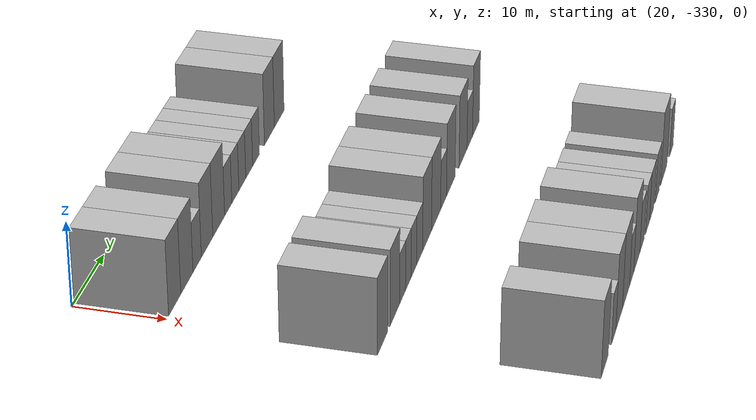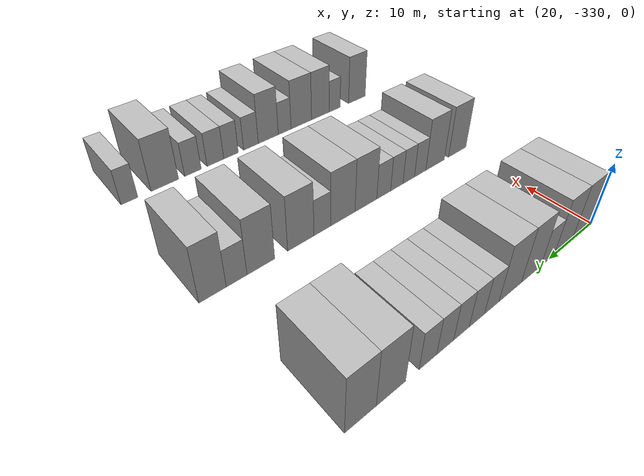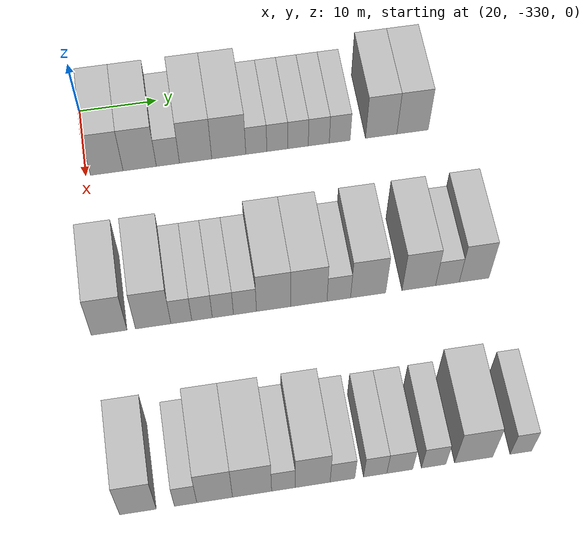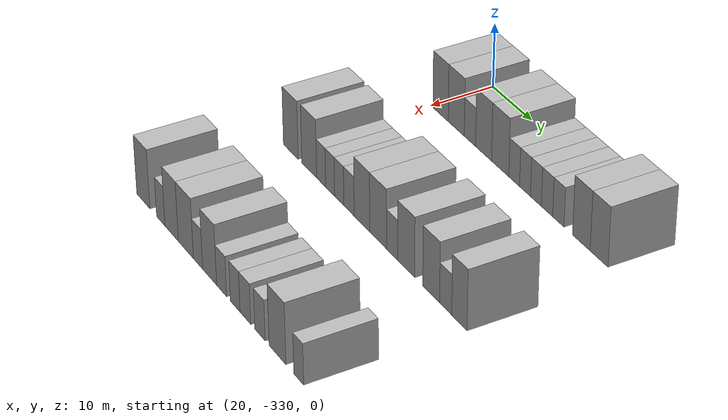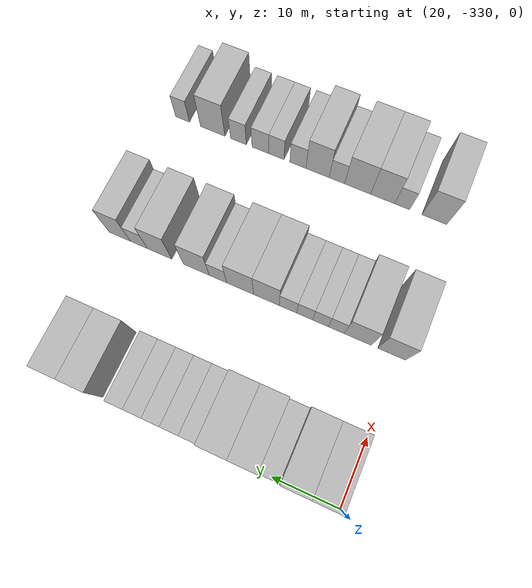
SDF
<sdf version="1.6">
 <world name="default">
  <model name="building_17">
   <static>1</static>
   <pose>25.0000 -327.3460 0 0.000000 0.000000 0.000000</pose>
   <link name="link">
    <pose>0 0 4.50 0 0 0</pose>
    <collision name="collision"><geometry><box><size>10.0000 4.1200 9.0000</size></box></geometry></collision>
    <visual name="visual">
     <cast_shadows>0</cast_shadows>
     <geometry><box><size>10.0000 4.1200 9.0000</size></box></geometry>
     <material>
      <script>
       <uri>model://HANNAS_wall/materials/scripts</uri>
       <uri>model://HANNAS_wall/materials/textures</uri>
       <name>vrc/HANNAS_wall</name>
      </script>
     </material>
    </visual>
   </link>
  </model>
  <model name="building_18">
   <static>1</static>
   <pose>25.0000 -323.1835 0 0.000000 0.000000 0.000000</pose>
   <link name="link">
    <pose>0 0 4.50 0 0 0</pose>
    <collision name="collision"><geometry><box><size>10.0000 4.2051 9.0000</size></box></geometry></collision>
    <visual name="visual">
     <cast_shadows>0</cast_shadows>
     <geometry><box><size>10.0000 4.2051 9.0000</size></box></geometry>
     <material>
      <script>
       <uri>model://HANNAS_wall/materials/scripts</uri>
       <uri>model://HANNAS_wall/materials/textures</uri>
       <name>vrc/HANNAS_wall</name>
      </script>
     </material>
    </visual>
   </link>
  </model>
  <model name="building_19">
   <static>1</static>
   <pose>25.0000 -319.6114 0 0.000000 0.000000 0.000000</pose>
   <link name="link">
    <pose>0 0 3.00 0 0 0</pose>
    <collision name="collision"><geometry><box><size>10.0000 2.9392 6.0000</size></box></geometry></collision>
    <visual name="visual">
     <cast_shadows>0</cast_shadows>
     <geometry><box><size>10.0000 2.9392 6.0000</size></box></geometry>
     <material>
      <script>
       <uri>model://HANNAS_wall/materials/scripts</uri>
       <uri>model://HANNAS_wall/materials/textures</uri>
       <name>vrc/HANNAS_wall</name>
      </script>
     </material>
    </visual>
   </link>
  </model>
  <model name="building_20">
   <static>1</static>
   <pose>25.0000 -316.0873 0 0.000000 0.000000 0.000000</pose>
   <link name="link">
    <pose>0 0 4.50 0 0 0</pose>
    <collision name="collision"><geometry><box><size>10.0000 4.1088 9.0000</size></box></geometry></collision>
    <visual name="visual">
     <cast_shadows>0</cast_shadows>
     <geometry><box><size>10.0000 4.1088 9.0000</size></box></geometry>
     <material>
      <script>
       <uri>model://HANNAS_wall/materials/scripts</uri>
       <uri>model://HANNAS_wall/materials/textures</uri>
       <name>vrc/HANNAS_wall</name>
      </script>
     </material>
    </visual>
   </link>
  </model>
  <model name="building_21">
   <static>1</static>
   <pose>25.0000 -311.8550 0 0.000000 0.000000 0.000000</pose>
   <link name="link">
    <pose>0 0 4.50 0 0 0</pose>
    <collision name="collision"><geometry><box><size>10.0000 4.3558 9.0000</size></box></geometry></collision>
    <visual name="visual">
     <cast_shadows>0</cast_shadows>
     <geometry><box><size>10.0000 4.3558 9.0000</size></box></geometry>
     <material>
      <script>
       <uri>model://HANNAS_wall/materials/scripts</uri>
       <uri>model://HANNAS_wall/materials/textures</uri>
       <name>vrc/HANNAS_wall</name>
      </script>
     </material>
    </visual>
   </link>
  </model>
  <model name="building_22">
   <static>1</static>
   <pose>25.0000 -308.3280 0 0.000000 0.000000 0.000000</pose>
   <link name="link">
    <pose>0 0 3.00 0 0 0</pose>
    <collision name="collision"><geometry><box><size>10.0000 2.6983 6.0000</size></box></geometry></collision>
    <visual name="visual">
     <cast_shadows>0</cast_shadows>
     <geometry><box><size>10.0000 2.6983 6.0000</size></box></geometry>
     <material>
      <script>
       <uri>model://HANNAS_wall/materials/scripts</uri>
       <uri>model://HANNAS_wall/materials/textures</uri>
       <name>vrc/HANNAS_wall</name>
      </script>
     </material>
    </visual>
   </link>
  </model>
  <model name="building_23">
   <static>1</static>
   <pose>25.0000 -305.6368 0 0.000000 0.000000 0.000000</pose>
   <link name="link">
    <pose>0 0 3.00 0 0 0</pose>
    <collision name="collision"><geometry><box><size>10.0000 2.6841 6.0000</size></box></geometry></collision>
    <visual name="visual">
     <cast_shadows>0</cast_shadows>
     <geometry><box><size>10.0000 2.6841 6.0000</size></box></geometry>
     <material>
      <script>
       <uri>model://HANNAS_wall/materials/scripts</uri>
       <uri>model://HANNAS_wall/materials/textures</uri>
       <name>vrc/HANNAS_wall</name>
      </script>
     </material>
    </visual>
   </link>
  </model>
  <model name="building_24">
   <static>1</static>
   <pose>25.0000 -302.9718 0 0.000000 0.000000 0.000000</pose>
   <link name="link">
    <pose>0 0 3.00 0 0 0</pose>
    <collision name="collision"><geometry><box><size>10.0000 2.6458 6.0000</size></box></geometry></collision>
    <visual name="visual">
     <cast_shadows>0</cast_shadows>
     <geometry><box><size>10.0000 2.6458 6.0000</size></box></geometry>
     <material>
      <script>
       <uri>model://HANNAS_wall/materials/scripts</uri>
       <uri>model://HANNAS_wall/materials/textures</uri>
       <name>vrc/HANNAS_wall</name>
      </script>
     </material>
    </visual>
   </link>
  </model>
  <model name="building_25">
   <static>1</static>
   <pose>25.0000 -300.2924 0 0.000000 0.000000 0.000000</pose>
   <link name="link">
    <pose>0 0 3.00 0 0 0</pose>
    <collision name="collision"><geometry><box><size>10.0000 2.7131 6.0000</size></box></geometry></collision>
    <visual name="visual">
     <cast_shadows>0</cast_shadows>
     <geometry><box><size>10.0000 2.7131 6.0000</size></box></geometry>
     <material>
      <script>
       <uri>model://HANNAS_wall/materials/scripts</uri>
       <uri>model://HANNAS_wall/materials/textures</uri>
       <name>vrc/HANNAS_wall</name>
      </script>
     </material>
    </visual>
   </link>
  </model>
  <model name="building_26">
   <static>1</static>
   <pose>25.0000 -297.5843 0 0.000000 0.000000 0.000000</pose>
   <link name="link">
    <pose>0 0 3.00 0 0 0</pose>
    <collision name="collision"><geometry><box><size>10.0000 2.7031 6.0000</size></box></geometry></collision>
    <visual name="visual">
     <cast_shadows>0</cast_shadows>
     <geometry><box><size>10.0000 2.7031 6.0000</size></box></geometry>
     <material>
      <script>
       <uri>model://HANNAS_wall/materials/scripts</uri>
       <uri>model://HANNAS_wall/materials/textures</uri>
       <name>vrc/HANNAS_wall</name>
      </script>
     </material>
    </visual>
   </link>
  </model>
  <model name="building_27">
   <static>1</static>
   <pose>25.0000 -292.1914 0 0.000000 0.000000 0.000000</pose>
   <link name="link">
    <pose>0 0 4.50 0 0 0</pose>
    <collision name="collision"><geometry><box><size>10.0000 4.0827 9.0000</size></box></geometry></collision>
    <visual name="visual">
     <cast_shadows>0</cast_shadows>
     <geometry><box><size>10.0000 4.0827 9.0000</size></box></geometry>
     <material>
      <script>
       <uri>model://HANNAS_wall/materials/scripts</uri>
       <uri>model://HANNAS_wall/materials/textures</uri>
       <name>vrc/HANNAS_wall</name>
      </script>
     </material>
    </visual>
   </link>
  </model>
  <model name="building_28">
   <static>1</static>
   <pose>25.0000 -288.1037 0 0.000000 0.000000 0.000000</pose>
   <link name="link">
    <pose>0 0 4.50 0 0 0</pose>
    <collision name="collision"><geometry><box><size>10.0000 4.0928 9.0000</size></box></geometry></collision>
    <visual name="visual">
     <cast_shadows>0</cast_shadows>
     <geometry><box><size>10.0000 4.0928 9.0000</size></box></geometry>
     <material>
      <script>
       <uri>model://HANNAS_wall/materials/scripts</uri>
       <uri>model://HANNAS_wall/materials/textures</uri>
       <name>vrc/HANNAS_wall</name>
      </script>
     </material>
    </visual>
   </link>
  </model>
  <model name="building_207">
   <static>1</static>
   <pose>47.0000 -329.0703 0 0.000000 0.000000 0.000000</pose>
   <link name="link">
    <pose>0 0 4.50 0 0 0</pose>
    <collision name="collision"><geometry><box><size>10.0000 4.2202 9.0000</size></box></geometry></collision>
    <visual name="visual">
     <cast_shadows>0</cast_shadows>
     <geometry><box><size>10.0000 4.2202 9.0000</size></box></geometry>
     <material>
      <script>
       <uri>model://HANNAS_wall/materials/scripts</uri>
       <uri>model://HANNAS_wall/materials/textures</uri>
       <name>vrc/HANNAS_wall</name>
      </script>
     </material>
    </visual>
   </link>
  </model>
  <model name="building_208">
   <static>1</static>
   <pose>47.0000 -323.8616 0 0.000000 0.000000 0.000000</pose>
   <link name="link">
    <pose>0 0 4.50 0 0 0</pose>
    <collision name="collision"><geometry><box><size>10.0000 4.1972 9.0000</size></box></geometry></collision>
    <visual name="visual">
     <cast_shadows>0</cast_shadows>
     <geometry><box><size>10.0000 4.1972 9.0000</size></box></geometry>
     <material>
      <script>
       <uri>model://HANNAS_wall/materials/scripts</uri>
       <uri>model://HANNAS_wall/materials/textures</uri>
       <name>vrc/HANNAS_wall</name>
      </script>
     </material>
    </visual>
   </link>
  </model>
  <model name="building_209">
   <static>1</static>
   <pose>47.0000 -320.5207 0 0.000000 0.000000 0.000000</pose>
   <link name="link">
    <pose>0 0 3.00 0 0 0</pose>
    <collision name="collision"><geometry><box><size>10.0000 2.4846 6.0000</size></box></geometry></collision>
    <visual name="visual">
     <cast_shadows>0</cast_shadows>
     <geometry><box><size>10.0000 2.4846 6.0000</size></box></geometry>
     <material>
      <script>
       <uri>model://HANNAS_wall/materials/scripts</uri>
       <uri>model://HANNAS_wall/materials/textures</uri>
       <name>vrc/HANNAS_wall</name>
      </script>
     </material>
    </visual>
   </link>
  </model>
  <model name="building_210">
   <static>1</static>
   <pose>47.0000 -318.0544 0 0.000000 0.000000 0.000000</pose>
   <link name="link">
    <pose>0 0 3.00 0 0 0</pose>
    <collision name="collision"><geometry><box><size>10.0000 2.4481 6.0000</size></box></geometry></collision>
    <visual name="visual">
     <cast_shadows>0</cast_shadows>
     <geometry><box><size>10.0000 2.4481 6.0000</size></box></geometry>
     <material>
      <script>
       <uri>model://HANNAS_wall/materials/scripts</uri>
       <uri>model://HANNAS_wall/materials/textures</uri>
       <name>vrc/HANNAS_wall</name>
      </script>
     </material>
    </visual>
   </link>
  </model>
  <model name="building_211">
   <static>1</static>
   <pose>47.0000 -315.5675 0 0.000000 0.000000 0.000000</pose>
   <link name="link">
    <pose>0 0 3.00 0 0 0</pose>
    <collision name="collision"><geometry><box><size>10.0000 2.5256 6.0000</size></box></geometry></collision>
    <visual name="visual">
     <cast_shadows>0</cast_shadows>
     <geometry><box><size>10.0000 2.5256 6.0000</size></box></geometry>
     <material>
      <script>
       <uri>model://HANNAS_wall/materials/scripts</uri>
       <uri>model://HANNAS_wall/materials/textures</uri>
       <name>vrc/HANNAS_wall</name>
      </script>
     </material>
    </visual>
   </link>
  </model>
  <model name="building_212">
   <static>1</static>
   <pose>47.0000 -312.9240 0 0.000000 0.000000 0.000000</pose>
   <link name="link">
    <pose>0 0 3.00 0 0 0</pose>
    <collision name="collision"><geometry><box><size>10.0000 2.7615 6.0000</size></box></geometry></collision>
    <visual name="visual">
     <cast_shadows>0</cast_shadows>
     <geometry><box><size>10.0000 2.7615 6.0000</size></box></geometry>
     <material>
      <script>
       <uri>model://HANNAS_wall/materials/scripts</uri>
       <uri>model://HANNAS_wall/materials/textures</uri>
       <name>vrc/HANNAS_wall</name>
      </script>
     </material>
    </visual>
   </link>
  </model>
  <model name="building_213">
   <static>1</static>
   <pose>47.0000 -309.4773 0 0.000000 0.000000 0.000000</pose>
   <link name="link">
    <pose>0 0 4.50 0 0 0</pose>
    <collision name="collision"><geometry><box><size>10.0000 4.1317 9.0000</size></box></geometry></collision>
    <visual name="visual">
     <cast_shadows>0</cast_shadows>
     <geometry><box><size>10.0000 4.1317 9.0000</size></box></geometry>
     <material>
      <script>
       <uri>model://HANNAS_wall/materials/scripts</uri>
       <uri>model://HANNAS_wall/materials/textures</uri>
       <name>vrc/HANNAS_wall</name>
      </script>
     </material>
    </visual>
   </link>
  </model>
  <model name="building_214">
   <static>1</static>
   <pose>47.0000 -305.2326 0 0.000000 0.000000 0.000000</pose>
   <link name="link">
    <pose>0 0 4.50 0 0 0</pose>
    <collision name="collision"><geometry><box><size>10.0000 4.3578 9.0000</size></box></geometry></collision>
    <visual name="visual">
     <cast_shadows>0</cast_shadows>
     <geometry><box><size>10.0000 4.3578 9.0000</size></box></geometry>
     <material>
      <script>
       <uri>model://HANNAS_wall/materials/scripts</uri>
       <uri>model://HANNAS_wall/materials/textures</uri>
       <name>vrc/HANNAS_wall</name>
      </script>
     </material>
    </visual>
   </link>
  </model>
  <model name="building_215">
   <static>1</static>
   <pose>47.0000 -301.6247 0 0.000000 0.000000 0.000000</pose>
   <link name="link">
    <pose>0 0 3.00 0 0 0</pose>
    <collision name="collision"><geometry><box><size>10.0000 2.8580 6.0000</size></box></geometry></collision>
    <visual name="visual">
     <cast_shadows>0</cast_shadows>
     <geometry><box><size>10.0000 2.8580 6.0000</size></box></geometry>
     <material>
      <script>
       <uri>model://HANNAS_wall/materials/scripts</uri>
       <uri>model://HANNAS_wall/materials/textures</uri>
       <name>vrc/HANNAS_wall</name>
      </script>
     </material>
    </visual>
   </link>
  </model>
  <model name="building_216">
   <static>1</static>
   <pose>47.0000 -298.0639 0 0.000000 0.000000 0.000000</pose>
   <link name="link">
    <pose>0 0 4.50 0 0 0</pose>
    <collision name="collision"><geometry><box><size>10.0000 4.2637 9.0000</size></box></geometry></collision>
    <visual name="visual">
     <cast_shadows>0</cast_shadows>
     <geometry><box><size>10.0000 4.2637 9.0000</size></box></geometry>
     <material>
      <script>
       <uri>model://HANNAS_wall/materials/scripts</uri>
       <uri>model://HANNAS_wall/materials/textures</uri>
       <name>vrc/HANNAS_wall</name>
      </script>
     </material>
    </visual>
   </link>
  </model>
  <model name="building_217">
   <static>1</static>
   <pose>47.0000 -291.8824 0 0.000000 0.000000 0.000000</pose>
   <link name="link">
    <pose>0 0 4.50 0 0 0</pose>
    <collision name="collision"><geometry><box><size>10.0000 4.0992 9.0000</size></box></geometry></collision>
    <visual name="visual">
     <cast_shadows>0</cast_shadows>
     <geometry><box><size>10.0000 4.0992 9.0000</size></box></geometry>
     <material>
      <script>
       <uri>model://HANNAS_wall/materials/scripts</uri>
       <uri>model://HANNAS_wall/materials/textures</uri>
       <name>vrc/HANNAS_wall</name>
      </script>
     </material>
    </visual>
   </link>
  </model>
  <model name="building_218">
   <static>1</static>
   <pose>47.0000 -288.3813 0 0.000000 0.000000 0.000000</pose>
   <link name="link">
    <pose>0 0 3.00 0 0 0</pose>
    <collision name="collision"><geometry><box><size>10.0000 2.9030 6.0000</size></box></geometry></collision>
    <visual name="visual">
     <cast_shadows>0</cast_shadows>
     <geometry><box><size>10.0000 2.9030 6.0000</size></box></geometry>
     <material>
      <script>
       <uri>model://HANNAS_wall/materials/scripts</uri>
       <uri>model://HANNAS_wall/materials/textures</uri>
       <name>vrc/HANNAS_wall</name>
      </script>
     </material>
    </visual>
   </link>
  </model>
  <model name="building_219">
   <static>1</static>
   <pose>47.0000 -285.1009 0 0.000000 0.000000 0.000000</pose>
   <link name="link">
    <pose>0 0 4.50 0 0 0</pose>
    <collision name="collision"><geometry><box><size>10.0000 3.6578 9.0000</size></box></geometry></collision>
    <visual name="visual">
     <cast_shadows>0</cast_shadows>
     <geometry><box><size>10.0000 3.6578 9.0000</size></box></geometry>
     <material>
      <script>
       <uri>model://HANNAS_wall/materials/scripts</uri>
       <uri>model://HANNAS_wall/materials/textures</uri>
       <name>vrc/HANNAS_wall</name>
      </script>
     </material>
    </visual>
   </link>
  </model>
  <model name="building_393">
   <static>1</static>
   <pose>69.0000 -327.9179 0 0.000000 0.000000 0.000000</pose>
   <link name="link">
    <pose>0 0 4.50 0 0 0</pose>
    <collision name="collision"><geometry><box><size>10.0000 4.0322 9.0000</size></box></geometry></collision>
    <visual name="visual">
     <cast_shadows>0</cast_shadows>
     <geometry><box><size>10.0000 4.0322 9.0000</size></box></geometry>
     <material>
      <script>
       <uri>model://HANNAS_wall/materials/scripts</uri>
       <uri>model://HANNAS_wall/materials/textures</uri>
       <name>vrc/HANNAS_wall</name>
      </script>
     </material>
    </visual>
   </link>
  </model>
  <model name="building_394">
   <static>1</static>
   <pose>69.0000 -322.6602 0 0.000000 0.000000 0.000000</pose>
   <link name="link">
    <pose>0 0 3.00 0 0 0</pose>
    <collision name="collision"><geometry><box><size>10.0000 2.4833 6.0000</size></box></geometry></collision>
    <visual name="visual">
     <cast_shadows>0</cast_shadows>
     <geometry><box><size>10.0000 2.4833 6.0000</size></box></geometry>
     <material>
      <script>
       <uri>model://HANNAS_wall/materials/scripts</uri>
       <uri>model://HANNAS_wall/materials/textures</uri>
       <name>vrc/HANNAS_wall</name>
      </script>
     </material>
    </visual>
   </link>
  </model>
  <model name="building_395">
   <static>1</static>
   <pose>69.0000 -319.4353 0 0.000000 0.000000 0.000000</pose>
   <link name="link">
    <pose>0 0 4.50 0 0 0</pose>
    <collision name="collision"><geometry><box><size>10.0000 3.9664 9.0000</size></box></geometry></collision>
    <visual name="visual">
     <cast_shadows>0</cast_shadows>
     <geometry><box><size>10.0000 3.9664 9.0000</size></box></geometry>
     <material>
      <script>
       <uri>model://HANNAS_wall/materials/scripts</uri>
       <uri>model://HANNAS_wall/materials/textures</uri>
       <name>vrc/HANNAS_wall</name>
      </script>
     </material>
    </visual>
   </link>
  </model>
  <model name="building_396">
   <static>1</static>
   <pose>69.0000 -315.2718 0 0.000000 0.000000 0.000000</pose>
   <link name="link">
    <pose>0 0 4.50 0 0 0</pose>
    <collision name="collision"><geometry><box><size>10.0000 4.3606 9.0000</size></box></geometry></collision>
    <visual name="visual">
     <cast_shadows>0</cast_shadows>
     <geometry><box><size>10.0000 4.3606 9.0000</size></box></geometry>
     <material>
      <script>
       <uri>model://HANNAS_wall/materials/scripts</uri>
       <uri>model://HANNAS_wall/materials/textures</uri>
       <name>vrc/HANNAS_wall</name>
      </script>
     </material>
    </visual>
   </link>
  </model>
  <model name="building_397">
   <static>1</static>
   <pose>69.0000 -311.7827 0 0.000000 0.000000 0.000000</pose>
   <link name="link">
    <pose>0 0 3.00 0 0 0</pose>
    <collision name="collision"><geometry><box><size>10.0000 2.6175 6.0000</size></box></geometry></collision>
    <visual name="visual">
     <cast_shadows>0</cast_shadows>
     <geometry><box><size>10.0000 2.6175 6.0000</size></box></geometry>
     <material>
      <script>
       <uri>model://HANNAS_wall/materials/scripts</uri>
       <uri>model://HANNAS_wall/materials/textures</uri>
       <name>vrc/HANNAS_wall</name>
      </script>
     </material>
    </visual>
   </link>
  </model>
  <model name="building_398">
   <static>1</static>
   <pose>69.0000 -308.5019 0 0.000000 0.000000 0.000000</pose>
   <link name="link">
    <pose>0 0 4.50 0 0 0</pose>
    <collision name="collision"><geometry><box><size>10.0000 3.9441 9.0000</size></box></geometry></collision>
    <visual name="visual">
     <cast_shadows>0</cast_shadows>
     <geometry><box><size>10.0000 3.9441 9.0000</size></box></geometry>
     <material>
      <script>
       <uri>model://HANNAS_wall/materials/scripts</uri>
       <uri>model://HANNAS_wall/materials/textures</uri>
       <name>vrc/HANNAS_wall</name>
      </script>
     </material>
    </visual>
   </link>
  </model>
  <model name="building_399">
   <static>1</static>
   <pose>69.0000 -305.1388 0 0.000000 0.000000 0.000000</pose>
   <link name="link">
    <pose>0 0 3.00 0 0 0</pose>
    <collision name="collision"><geometry><box><size>10.0000 2.7823 6.0000</size></box></geometry></collision>
    <visual name="visual">
     <cast_shadows>0</cast_shadows>
     <geometry><box><size>10.0000 2.7823 6.0000</size></box></geometry>
     <material>
      <script>
       <uri>model://HANNAS_wall/materials/scripts</uri>
       <uri>model://HANNAS_wall/materials/textures</uri>
       <name>vrc/HANNAS_wall</name>
      </script>
     </material>
    </visual>
   </link>
  </model>
  <model name="building_400">
   <static>1</static>
   <pose>69.0000 -301.4303 0 0.000000 0.000000 0.000000</pose>
   <link name="link">
    <pose>0 0 3.00 0 0 0</pose>
    <collision name="collision"><geometry><box><size>10.0000 2.6345 6.0000</size></box></geometry></collision>
    <visual name="visual">
     <cast_shadows>0</cast_shadows>
     <geometry><box><size>10.0000 2.6345 6.0000</size></box></geometry>
     <material>
      <script>
       <uri>model://HANNAS_wall/materials/scripts</uri>
       <uri>model://HANNAS_wall/materials/textures</uri>
       <name>vrc/HANNAS_wall</name>
      </script>
     </material>
    </visual>
   </link>
  </model>
  <model name="building_401">
   <static>1</static>
   <pose>69.0000 -298.6455 0 0.000000 0.000000 0.000000</pose>
   <link name="link">
    <pose>0 0 3.00 0 0 0</pose>
    <collision name="collision"><geometry><box><size>10.0000 2.9351 6.0000</size></box></geometry></collision>
    <visual name="visual">
     <cast_shadows>0</cast_shadows>
     <geometry><box><size>10.0000 2.9351 6.0000</size></box></geometry>
     <material>
      <script>
       <uri>model://HANNAS_wall/materials/scripts</uri>
       <uri>model://HANNAS_wall/materials/textures</uri>
       <name>vrc/HANNAS_wall</name>
      </script>
     </material>
    </visual>
   </link>
  </model>
  <model name="building_402">
   <static>1</static>
   <pose>69.0000 -294.7862 0 0.000000 0.000000 0.000000</pose>
   <link name="link">
    <pose>0 0 3.00 0 0 0</pose>
    <collision name="collision"><geometry><box><size>10.0000 2.7835 6.0000</size></box></geometry></collision>
    <visual name="visual">
     <cast_shadows>0</cast_shadows>
     <geometry><box><size>10.0000 2.7835 6.0000</size></box></geometry>
     <material>
      <script>
       <uri>model://HANNAS_wall/materials/scripts</uri>
       <uri>model://HANNAS_wall/materials/textures</uri>
       <name>vrc/HANNAS_wall</name>
      </script>
     </material>
    </visual>
   </link>
  </model>
  <model name="building_403">
   <static>1</static>
   <pose>69.0000 -290.2115 0 0.000000 0.000000 0.000000</pose>
   <link name="link">
    <pose>0 0 4.50 0 0 0</pose>
    <collision name="collision"><geometry><box><size>10.0000 4.3660 9.0000</size></box></geometry></collision>
    <visual name="visual">
     <cast_shadows>0</cast_shadows>
     <geometry><box><size>10.0000 4.3660 9.0000</size></box></geometry>
     <material>
      <script>
       <uri>model://HANNAS_wall/materials/scripts</uri>
       <uri>model://HANNAS_wall/materials/textures</uri>
       <name>vrc/HANNAS_wall</name>
      </script>
     </material>
    </visual>
   </link>
  </model>
  <model name="building_404">
   <static>1</static>
   <pose>69.0000 -284.7836 0 0.000000 0.000000 0.000000</pose>
   <link name="link">
    <pose>0 0 3.00 0 0 0</pose>
    <collision name="collision"><geometry><box><size>10.0000 2.4897 6.0000</size></box></geometry></collision>
    <visual name="visual">
     <cast_shadows>0</cast_shadows>
     <geometry><box><size>10.0000 2.4897 6.0000</size></box></geometry>
     <material>
      <script>
       <uri>model://HANNAS_wall/materials/scripts</uri>
       <uri>model://HANNAS_wall/materials/textures</uri>
       <name>vrc/HANNAS_wall</name>
      </script>
     </material>
    </visual>
   </link>
  </model>
 </world>
</sdf>
